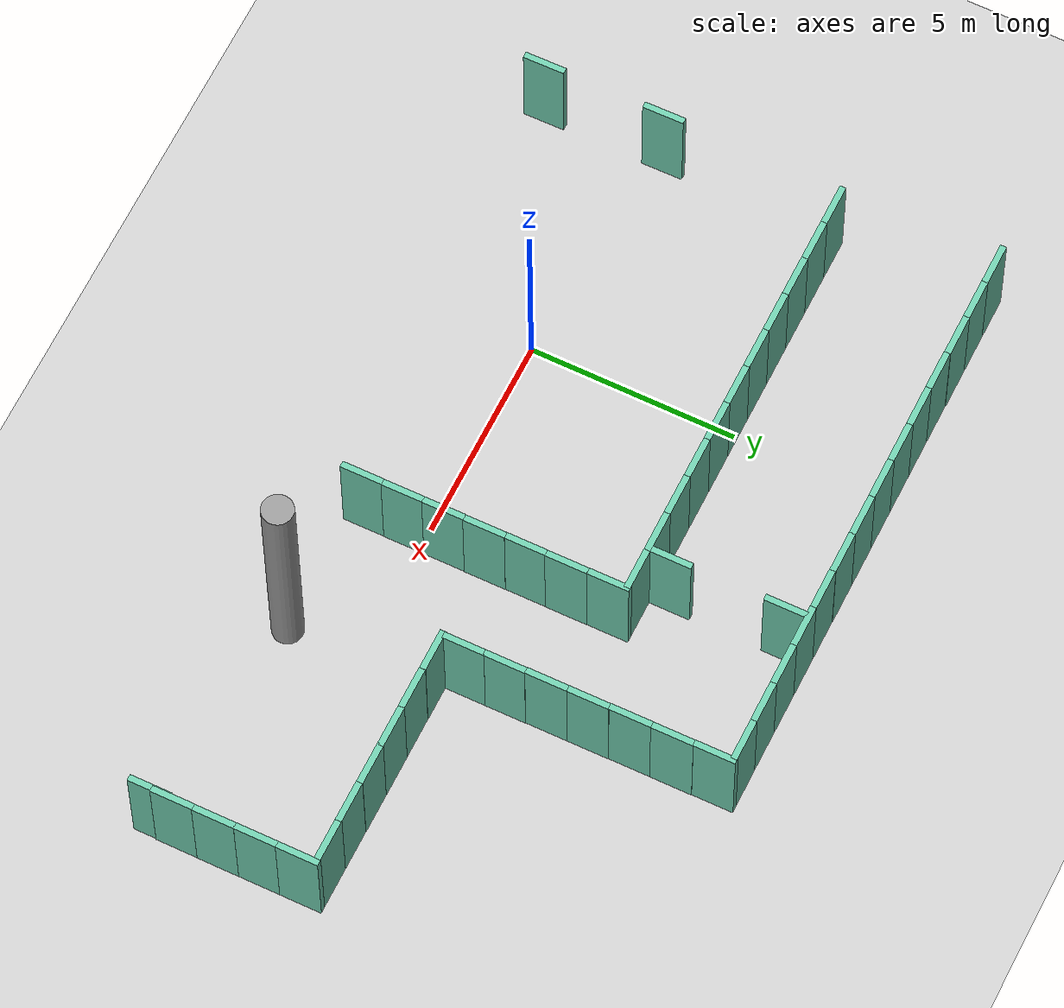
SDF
<sdf version="1.6">
 <world name="default">
  <model name="ground_plane">
   <static>1</static>
   <link name="link">
    <collision name="collision">
     <geometry><plane><normal>0 0 1</normal><size>100 100</size></plane></geometry>
     <surface><friction><ode><mu>100</mu><mu2>50</mu2></ode></friction></surface>
    </collision>
    <visual name="visual">
     <cast_shadows>0</cast_shadows>
     <geometry><plane><normal>0 0 1</normal><size>100 100</size></plane></geometry>
     <material>
      <script><uri>file://media/materials/scripts/gazebo.material</uri><name>Gazebo/Grey</name></script>
     </material>
    </visual>
   </link>
  </model>
  <model name="wall1m_0_clone_8_clone">
   <pose>-5 5 0 0 -0 0</pose>
   <link name="Wall_2">
    <collision name="Wall_2_Collision">
     <geometry><box><size>1 0.15 2.5</size></box></geometry>
     <pose>0 0 1.25 0 -0 0</pose>
    </collision>
    <visual name="Wall_2_Visual">
     <pose>0 0 1.25 0 -0 0</pose>
     <geometry><box><size>1 0.15 2.5</size></box></geometry>
     <material>
      <script><uri>file://media/materials/scripts/gazebo.material</uri><name>Gazebo/Grey</name></script>
      <ambient>0.435294 0.796078 0.67451 1</ambient>
     </material>
     <meta><layer>0</layer></meta>
    </visual>
   </link>
   <static>1</static>
  </model>
  <model name="wall1m_0_clone_8_clone_0">
   <pose>-4 5 0 0 -0 0</pose>
   <link name="Wall_2">
    <collision name="Wall_2_Collision">
     <geometry><box><size>1 0.15 2.5</size></box></geometry>
     <pose>0 0 1.25 0 -0 0</pose>
    </collision>
    <visual name="Wall_2_Visual">
     <pose>0 0 1.25 0 -0 0</pose>
     <geometry><box><size>1 0.15 2.5</size></box></geometry>
     <material>
      <script><uri>file://media/materials/scripts/gazebo.material</uri><name>Gazebo/Grey</name></script>
      <ambient>0.435294 0.796078 0.67451 1</ambient>
     </material>
     <meta><layer>0</layer></meta>
    </visual>
   </link>
   <static>1</static>
  </model>
  <model name="wall1m_0_clone_8_clone_1">
   <pose>-3 5 0 0 -0 0</pose>
   <link name="Wall_2">
    <collision name="Wall_2_Collision">
     <geometry><box><size>1 0.15 2.5</size></box></geometry>
     <pose>0 0 1.25 0 -0 0</pose>
    </collision>
    <visual name="Wall_2_Visual">
     <pose>0 0 1.25 0 -0 0</pose>
     <geometry><box><size>1 0.15 2.5</size></box></geometry>
     <material>
      <script><uri>file://media/materials/scripts/gazebo.material</uri><name>Gazebo/Grey</name></script>
      <ambient>0.435294 0.796078 0.67451 1</ambient>
     </material>
     <meta><layer>0</layer></meta>
    </visual>
   </link>
   <static>1</static>
  </model>
  <model name="wall1m_0_clone_8_clone_2">
   <pose>-2 5 0 0 -0 0</pose>
   <link name="Wall_2">
    <collision name="Wall_2_Collision">
     <geometry><box><size>1 0.15 2.5</size></box></geometry>
     <pose>0 0 1.25 0 -0 0</pose>
    </collision>
    <visual name="Wall_2_Visual">
     <pose>0 0 1.25 0 -0 0</pose>
     <geometry><box><size>1 0.15 2.5</size></box></geometry>
     <material>
      <script><uri>file://media/materials/scripts/gazebo.material</uri><name>Gazebo/Grey</name></script>
      <ambient>0.435294 0.796078 0.67451 1</ambient>
     </material>
     <meta><layer>0</layer></meta>
    </visual>
   </link>
   <static>1</static>
  </model>
  <model name="wall1m_0_clone_8_clone_3">
   <pose>-1 5 0 0 -0 0</pose>
   <link name="Wall_2">
    <collision name="Wall_2_Collision">
     <geometry><box><size>1 0.15 2.5</size></box></geometry>
     <pose>0 0 1.25 0 -0 0</pose>
    </collision>
    <visual name="Wall_2_Visual">
     <pose>0 0 1.25 0 -0 0</pose>
     <geometry><box><size>1 0.15 2.5</size></box></geometry>
     <material>
      <script><uri>file://media/materials/scripts/gazebo.material</uri><name>Gazebo/Grey</name></script>
      <ambient>0.435294 0.796078 0.67451 1</ambient>
     </material>
     <meta><layer>0</layer></meta>
    </visual>
   </link>
   <static>1</static>
  </model>
  <model name="wall1m_0_clone_8_clone_4">
   <pose>0 5 0 0 -0 0</pose>
   <link name="Wall_2">
    <collision name="Wall_2_Collision">
     <geometry><box><size>1 0.15 2.5</size></box></geometry>
     <pose>0 0 1.25 0 -0 0</pose>
    </collision>
    <visual name="Wall_2_Visual">
     <pose>0 0 1.25 0 -0 0</pose>
     <geometry><box><size>1 0.15 2.5</size></box></geometry>
     <material>
      <script><uri>file://media/materials/scripts/gazebo.material</uri><name>Gazebo/Grey</name></script>
      <ambient>0.435294 0.796078 0.67451 1</ambient>
     </material>
     <meta><layer>0</layer></meta>
    </visual>
   </link>
   <static>1</static>
  </model>
  <model name="wall1m_0_clone_8_clone_5">
   <pose>1 5 0 0 -0 0</pose>
   <link name="Wall_2">
    <collision name="Wall_2_Collision">
     <geometry><box><size>1 0.15 2.5</size></box></geometry>
     <pose>0 0 1.25 0 -0 0</pose>
    </collision>
    <visual name="Wall_2_Visual">
     <pose>0 0 1.25 0 -0 0</pose>
     <geometry><box><size>1 0.15 2.5</size></box></geometry>
     <material>
      <script><uri>file://media/materials/scripts/gazebo.material</uri><name>Gazebo/Grey</name></script>
      <ambient>0.435294 0.796078 0.67451 1</ambient>
     </material>
     <meta><layer>0</layer></meta>
    </visual>
   </link>
   <static>1</static>
  </model>
  <model name="wall1m_0_clone_8_clone_6">
   <pose>2 5 0 0 -0 0</pose>
   <link name="Wall_2">
    <collision name="Wall_2_Collision">
     <geometry><box><size>1 0.15 2.5</size></box></geometry>
     <pose>0 0 1.25 0 -0 0</pose>
    </collision>
    <visual name="Wall_2_Visual">
     <pose>0 0 1.25 0 -0 0</pose>
     <geometry><box><size>1 0.15 2.5</size></box></geometry>
     <material>
      <script><uri>file://media/materials/scripts/gazebo.material</uri><name>Gazebo/Grey</name></script>
      <ambient>0.435294 0.796078 0.67451 1</ambient>
     </material>
     <meta><layer>0</layer></meta>
    </visual>
   </link>
   <static>1</static>
  </model>
  <model name="wall1m_0_clone_8_clone_7">
   <pose>3 5 0 0 -0 0</pose>
   <link name="Wall_2">
    <collision name="Wall_2_Collision">
     <geometry><box><size>1 0.15 2.5</size></box></geometry>
     <pose>0 0 1.25 0 -0 0</pose>
    </collision>
    <visual name="Wall_2_Visual">
     <pose>0 0 1.25 0 -0 0</pose>
     <geometry><box><size>1 0.15 2.5</size></box></geometry>
     <material>
      <script><uri>file://media/materials/scripts/gazebo.material</uri><name>Gazebo/Grey</name></script>
      <ambient>0.435294 0.796078 0.67451 1</ambient>
     </material>
     <meta><layer>0</layer></meta>
    </visual>
   </link>
   <static>1</static>
  </model>
  <model name="wall1m_0_clone_8_clone_8">
   <pose>4 5 0 0 -0 0</pose>
   <link name="Wall_2">
    <collision name="Wall_2_Collision">
     <geometry><box><size>1 0.15 2.5</size></box></geometry>
     <pose>0 0 1.25 0 -0 0</pose>
    </collision>
    <visual name="Wall_2_Visual">
     <pose>0 0 1.25 0 -0 0</pose>
     <geometry><box><size>1 0.15 2.5</size></box></geometry>
     <material>
      <script><uri>file://media/materials/scripts/gazebo.material</uri><name>Gazebo/Grey</name></script>
      <ambient>0.435294 0.796078 0.67451 1</ambient>
     </material>
     <meta><layer>0</layer></meta>
    </visual>
   </link>
   <static>1</static>
  </model>
  <model name="wall1m_0_clone_8_clone_9">
   <pose>5 5 0 0 -0 0</pose>
   <link name="Wall_2">
    <collision name="Wall_2_Collision">
     <geometry><box><size>1 0.15 2.5</size></box></geometry>
     <pose>0 0 1.25 0 -0 0</pose>
    </collision>
    <visual name="Wall_2_Visual">
     <pose>0 0 1.25 0 -0 0</pose>
     <geometry><box><size>1 0.15 2.5</size></box></geometry>
     <material>
      <script><uri>file://media/materials/scripts/gazebo.material</uri><name>Gazebo/Grey</name></script>
      <ambient>0.435294 0.796078 0.67451 1</ambient>
     </material>
     <meta><layer>0</layer></meta>
    </visual>
   </link>
   <static>1</static>
  </model>
  <model name="wall1m_0_clone_8_clone_9_clone">
   <pose>5.49961 4.57845 0 0 0 -1.5658</pose>
   <link name="Wall_2">
    <collision name="Wall_2_Collision">
     <geometry><box><size>1 0.15 2.5</size></box></geometry>
     <pose>0 0 1.25 0 -0 0</pose>
    </collision>
    <visual name="Wall_2_Visual">
     <pose>0 0 1.25 0 -0 0</pose>
     <geometry><box><size>1 0.15 2.5</size></box></geometry>
     <material>
      <script><uri>file://media/materials/scripts/gazebo.material</uri><name>Gazebo/Grey</name></script>
      <ambient>0.435294 0.796078 0.67451 1</ambient>
     </material>
     <meta><layer>0</layer></meta>
    </visual>
   </link>
   <static>1</static>
  </model>
  <model name="wall1m_0_clone_8_clone_9_clone_clone_14">
   <pose>-5.47454 0.61865 0 0 0 -1.56</pose>
   <link name="Wall_2">
    <collision name="Wall_2_Collision">
     <geometry><box><size>1 0.15 2.5</size></box></geometry>
     <pose>0 0 1.25 0 -0 0</pose>
    </collision>
    <visual name="Wall_2_Visual">
     <pose>0 0 1.25 0 -0 0</pose>
     <geometry><box><size>1 0.15 2.5</size></box></geometry>
     <material>
      <script><uri>file://media/materials/scripts/gazebo.material</uri><name>Gazebo/Grey</name></script>
      <ambient>0.435294 0.796078 0.67451 1</ambient>
     </material>
     <meta><layer>0</layer></meta>
    </visual>
   </link>
   <static>1</static>
  </model>
  <model name="wall1m_0_clone_8_clone_9_clone_clone_17">
   <pose>-5.46878 -2.34019 0 0 0 -1.56</pose>
   <link name="Wall_2">
    <collision name="Wall_2_Collision">
     <geometry><box><size>1 0.15 2.5</size></box></geometry>
     <pose>0 0 1.25 0 -0 0</pose>
    </collision>
    <visual name="Wall_2_Visual">
     <pose>0 0 1.25 0 -0 0</pose>
     <geometry><box><size>1 0.15 2.5</size></box></geometry>
     <material>
      <script><uri>file://media/materials/scripts/gazebo.material</uri><name>Gazebo/Grey</name></script>
      <ambient>0.435294 0.796078 0.67451 1</ambient>
     </material>
     <meta><layer>0</layer></meta>
    </visual>
   </link>
   <static>1</static>
  </model>
  <model name="wall1m_0_clone_8_clone_clone_2">
   <pose>-5.18883 8.81035 0 0 -0 0</pose>
   <link name="Wall_2">
    <collision name="Wall_2_Collision">
     <geometry><box><size>1 0.15 2.5</size></box></geometry>
     <pose>0 0 1.25 0 -0 0</pose>
    </collision>
    <visual name="Wall_2_Visual">
     <pose>0 0 1.25 0 -0 0</pose>
     <geometry><box><size>1 0.15 2.5</size></box></geometry>
     <material>
      <script><uri>file://media/materials/scripts/gazebo.material</uri><name>Gazebo/Grey</name></script>
      <ambient>0.435294 0.796078 0.67451 1</ambient>
     </material>
     <meta><layer>0</layer></meta>
    </visual>
   </link>
   <static>1</static>
  </model>
  <model name="wall1m_0_clone_8_clone_clone_3">
   <pose>-4.21856 8.80952 0 0 -0 0</pose>
   <link name="Wall_2">
    <collision name="Wall_2_Collision">
     <geometry><box><size>1 0.15 2.5</size></box></geometry>
     <pose>0 0 1.25 0 -0 0</pose>
    </collision>
    <visual name="Wall_2_Visual">
     <pose>0 0 1.25 0 -0 0</pose>
     <geometry><box><size>1 0.15 2.5</size></box></geometry>
     <material>
      <script><uri>file://media/materials/scripts/gazebo.material</uri><name>Gazebo/Grey</name></script>
      <ambient>0.435294 0.796078 0.67451 1</ambient>
     </material>
     <meta><layer>0</layer></meta>
    </visual>
   </link>
   <static>1</static>
  </model>
  <model name="wall1m_0_clone_8_clone_clone_4">
   <pose>-3.22087 8.8088 0 0 -0 0</pose>
   <link name="Wall_2">
    <collision name="Wall_2_Collision">
     <geometry><box><size>1 0.15 2.5</size></box></geometry>
     <pose>0 0 1.25 0 -0 0</pose>
    </collision>
    <visual name="Wall_2_Visual">
     <pose>0 0 1.25 0 -0 0</pose>
     <geometry><box><size>1 0.15 2.5</size></box></geometry>
     <material>
      <script><uri>file://media/materials/scripts/gazebo.material</uri><name>Gazebo/Grey</name></script>
      <ambient>0.435294 0.796078 0.67451 1</ambient>
     </material>
     <meta><layer>0</layer></meta>
    </visual>
   </link>
   <static>1</static>
  </model>
  <model name="wall1m_0_clone_8_clone_clone_5">
   <pose>-2.23037 8.79955 0 0 -0 0</pose>
   <link name="Wall_2">
    <collision name="Wall_2_Collision">
     <geometry><box><size>1 0.15 2.5</size></box></geometry>
     <pose>0 0 1.25 0 -0 0</pose>
    </collision>
    <visual name="Wall_2_Visual">
     <pose>0 0 1.25 0 -0 0</pose>
     <geometry><box><size>1 0.15 2.5</size></box></geometry>
     <material>
      <script><uri>file://media/materials/scripts/gazebo.material</uri><name>Gazebo/Grey</name></script>
      <ambient>0.435294 0.796078 0.67451 1</ambient>
     </material>
     <meta><layer>0</layer></meta>
    </visual>
   </link>
   <static>1</static>
  </model>
  <model name="wall1m_0_clone_8_clone_clone_6">
   <pose>-1.25825 8.79936 0 0 -0 0</pose>
   <link name="Wall_2">
    <collision name="Wall_2_Collision">
     <geometry><box><size>1 0.15 2.5</size></box></geometry>
     <pose>0 0 1.25 0 -0 0</pose>
    </collision>
    <visual name="Wall_2_Visual">
     <pose>0 0 1.25 0 -0 0</pose>
     <geometry><box><size>1 0.15 2.5</size></box></geometry>
     <material>
      <script><uri>file://media/materials/scripts/gazebo.material</uri><name>Gazebo/Grey</name></script>
      <ambient>0.435294 0.796078 0.67451 1</ambient>
     </material>
     <meta><layer>0</layer></meta>
    </visual>
   </link>
   <static>1</static>
  </model>
  <model name="wall1m_0_clone_8_clone_clone_7">
   <pose>-0.28955 8.79942 0 0 -0 0</pose>
   <link name="Wall_2">
    <collision name="Wall_2_Collision">
     <geometry><box><size>1 0.15 2.5</size></box></geometry>
     <pose>0 0 1.25 0 -0 0</pose>
    </collision>
    <visual name="Wall_2_Visual">
     <pose>0 0 1.25 0 -0 0</pose>
     <geometry><box><size>1 0.15 2.5</size></box></geometry>
     <material>
      <script><uri>file://media/materials/scripts/gazebo.material</uri><name>Gazebo/Grey</name></script>
      <ambient>0.435294 0.796078 0.67451 1</ambient>
     </material>
     <meta><layer>0</layer></meta>
    </visual>
   </link>
   <static>1</static>
  </model>
  <model name="wall1m_0_clone_8_clone_clone_8">
   <pose>0.695038 8.79962 0 0 -0 0</pose>
   <link name="Wall_2">
    <collision name="Wall_2_Collision">
     <geometry><box><size>1 0.15 2.5</size></box></geometry>
     <pose>0 0 1.25 0 -0 0</pose>
    </collision>
    <visual name="Wall_2_Visual">
     <pose>0 0 1.25 0 -0 0</pose>
     <geometry><box><size>1 0.15 2.5</size></box></geometry>
     <material>
      <script><uri>file://media/materials/scripts/gazebo.material</uri><name>Gazebo/Grey</name></script>
      <ambient>0.435294 0.796078 0.67451 1</ambient>
     </material>
     <meta><layer>0</layer></meta>
    </visual>
   </link>
   <static>1</static>
  </model>
  <model name="wall1m_0_clone_8_clone_clone_9">
   <pose>1.69822 8.80194 0 0 -0 0</pose>
   <link name="Wall_2">
    <collision name="Wall_2_Collision">
     <geometry><box><size>1 0.15 2.5</size></box></geometry>
     <pose>0 0 1.25 0 -0 0</pose>
    </collision>
    <visual name="Wall_2_Visual">
     <pose>0 0 1.25 0 -0 0</pose>
     <geometry><box><size>1 0.15 2.5</size></box></geometry>
     <material>
      <script><uri>file://media/materials/scripts/gazebo.material</uri><name>Gazebo/Grey</name></script>
      <ambient>0.435294 0.796078 0.67451 1</ambient>
     </material>
     <meta><layer>0</layer></meta>
    </visual>
   </link>
   <static>1</static>
  </model>
  <model name="wall1m_0_clone_8_clone_clone_10">
   <pose>2.69303 8.80098 0 0 -0 0</pose>
   <link name="Wall_2">
    <collision name="Wall_2_Collision">
     <geometry><box><size>1 0.15 2.5</size></box></geometry>
     <pose>0 0 1.25 0 -0 0</pose>
    </collision>
    <visual name="Wall_2_Visual">
     <pose>0 0 1.25 0 -0 0</pose>
     <geometry><box><size>1 0.15 2.5</size></box></geometry>
     <material>
      <script><uri>file://media/materials/scripts/gazebo.material</uri><name>Gazebo/Grey</name></script>
      <ambient>0.435294 0.796078 0.67451 1</ambient>
     </material>
     <meta><layer>0</layer></meta>
    </visual>
   </link>
   <static>1</static>
  </model>
  <model name="wall1m_0_clone_8_clone_clone_11">
   <pose>3.69045 8.7948 0 0 -0 0</pose>
   <link name="Wall_2">
    <collision name="Wall_2_Collision">
     <geometry><box><size>1 0.15 2.5</size></box></geometry>
     <pose>0 0 1.25 0 -0 0</pose>
    </collision>
    <visual name="Wall_2_Visual">
     <pose>0 0 1.25 0 -0 0</pose>
     <geometry><box><size>1 0.15 2.5</size></box></geometry>
     <material>
      <script><uri>file://media/materials/scripts/gazebo.material</uri><name>Gazebo/Grey</name></script>
      <ambient>0.435294 0.796078 0.67451 1</ambient>
     </material>
     <meta><layer>0</layer></meta>
    </visual>
   </link>
   <static>1</static>
  </model>
  <model name="wall1m_0_clone_8_clone_clone_12">
   <pose>4.66215 8.79464 0 0 -0 0</pose>
   <link name="Wall_2">
    <collision name="Wall_2_Collision">
     <geometry><box><size>1 0.15 2.5</size></box></geometry>
     <pose>0 0 1.25 0 -0 0</pose>
    </collision>
    <visual name="Wall_2_Visual">
     <pose>0 0 1.25 0 -0 0</pose>
     <geometry><box><size>1 0.15 2.5</size></box></geometry>
     <material>
      <script><uri>file://media/materials/scripts/gazebo.material</uri><name>Gazebo/Grey</name></script>
      <ambient>0.435294 0.796078 0.67451 1</ambient>
     </material>
     <meta><layer>0</layer></meta>
    </visual>
   </link>
   <static>1</static>
  </model>
  <model name="wall1m_0_clone_8_clone_clone_13">
   <pose>5.66178 8.79379 0 0 -0 0</pose>
   <link name="Wall_2">
    <collision name="Wall_2_Collision">
     <geometry><box><size>1 0.15 2.5</size></box></geometry>
     <pose>0 0 1.25 0 -0 0</pose>
    </collision>
    <visual name="Wall_2_Visual">
     <pose>0 0 1.25 0 -0 0</pose>
     <geometry><box><size>1 0.15 2.5</size></box></geometry>
     <material>
      <script><uri>file://media/materials/scripts/gazebo.material</uri><name>Gazebo/Grey</name></script>
      <ambient>0.435294 0.796078 0.67451 1</ambient>
     </material>
     <meta><layer>0</layer></meta>
    </visual>
   </link>
   <static>1</static>
  </model>
  <model name="wall1m_0_clone_8_clone_clone_14">
   <pose>6.65931 8.793 0 0 -0 0</pose>
   <link name="Wall_2">
    <collision name="Wall_2_Collision">
     <geometry><box><size>1 0.15 2.5</size></box></geometry>
     <pose>0 0 1.25 0 -0 0</pose>
    </collision>
    <visual name="Wall_2_Visual">
     <pose>0 0 1.25 0 -0 0</pose>
     <geometry><box><size>1 0.15 2.5</size></box></geometry>
     <material>
      <script><uri>file://media/materials/scripts/gazebo.material</uri><name>Gazebo/Grey</name></script>
      <ambient>0.435294 0.796078 0.67451 1</ambient>
     </material>
     <meta><layer>0</layer></meta>
    </visual>
   </link>
   <static>1</static>
  </model>
  <model name="wall1m_0_clone_8_clone_clone_15">
   <pose>7.6468 8.79561 0 0 -0 0</pose>
   <link name="Wall_2">
    <collision name="Wall_2_Collision">
     <geometry><box><size>1 0.15 2.5</size></box></geometry>
     <pose>0 0 1.25 0 -0 0</pose>
    </collision>
    <visual name="Wall_2_Visual">
     <pose>0 0 1.25 0 -0 0</pose>
     <geometry><box><size>1 0.15 2.5</size></box></geometry>
     <material>
      <script><uri>file://media/materials/scripts/gazebo.material</uri><name>Gazebo/Grey</name></script>
      <ambient>0.435294 0.796078 0.67451 1</ambient>
     </material>
     <meta><layer>0</layer></meta>
    </visual>
   </link>
   <static>1</static>
  </model>
  <model name="wall1m_0_clone_8_clone_9_clone_clone">
   <pose>5.50809 3.57577 0 0 0 -1.5658</pose>
   <link name="Wall_2">
    <collision name="Wall_2_Collision">
     <geometry><box><size>1 0.15 2.5</size></box></geometry>
     <pose>0 0 1.25 0 -0 0</pose>
    </collision>
    <visual name="Wall_2_Visual">
     <pose>0 0 1.25 0 -0 0</pose>
     <geometry><box><size>1 0.15 2.5</size></box></geometry>
     <material>
      <script><uri>file://media/materials/scripts/gazebo.material</uri><name>Gazebo/Grey</name></script>
      <ambient>0.435294 0.796078 0.67451 1</ambient>
     </material>
     <meta><layer>0</layer></meta>
    </visual>
   </link>
   <static>1</static>
  </model>
  <model name="wall1m_0_clone_8_clone_9_clone_clone_0">
   <pose>5.5083 2.57689 0 0 0 -1.5658</pose>
   <link name="Wall_2">
    <collision name="Wall_2_Collision">
     <geometry><box><size>1 0.15 2.5</size></box></geometry>
     <pose>0 0 1.25 0 -0 0</pose>
    </collision>
    <visual name="Wall_2_Visual">
     <pose>0 0 1.25 0 -0 0</pose>
     <geometry><box><size>1 0.15 2.5</size></box></geometry>
     <material>
      <script><uri>file://media/materials/scripts/gazebo.material</uri><name>Gazebo/Grey</name></script>
      <ambient>0.435294 0.796078 0.67451 1</ambient>
     </material>
     <meta><layer>0</layer></meta>
    </visual>
   </link>
   <static>1</static>
  </model>
  <model name="wall1m_0_clone_8_clone_9_clone_clone_1">
   <pose>5.5167 1.6077 0 0 0 -1.5658</pose>
   <link name="Wall_2">
    <collision name="Wall_2_Collision">
     <geometry><box><size>1 0.15 2.5</size></box></geometry>
     <pose>0 0 1.25 0 -0 0</pose>
    </collision>
    <visual name="Wall_2_Visual">
     <pose>0 0 1.25 0 -0 0</pose>
     <geometry><box><size>1 0.15 2.5</size></box></geometry>
     <material>
      <script><uri>file://media/materials/scripts/gazebo.material</uri><name>Gazebo/Grey</name></script>
      <ambient>0.435294 0.796078 0.67451 1</ambient>
     </material>
     <meta><layer>0</layer></meta>
    </visual>
   </link>
   <static>1</static>
  </model>
  <model name="wall1m_0_clone_8_clone_9_clone_clone_2">
   <pose>5.51438 0.616616 0 0 0 -1.5658</pose>
   <link name="Wall_2">
    <collision name="Wall_2_Collision">
     <geometry><box><size>1 0.15 2.5</size></box></geometry>
     <pose>0 0 1.25 0 -0 0</pose>
    </collision>
    <visual name="Wall_2_Visual">
     <pose>0 0 1.25 0 -0 0</pose>
     <geometry><box><size>1 0.15 2.5</size></box></geometry>
     <material>
      <script><uri>file://media/materials/scripts/gazebo.material</uri><name>Gazebo/Grey</name></script>
      <ambient>0.435294 0.796078 0.67451 1</ambient>
     </material>
     <meta><layer>0</layer></meta>
    </visual>
   </link>
   <static>1</static>
  </model>
  <model name="wall1m_0_clone_8_clone_9_clone_clone_3">
   <pose>5.51756 -0.366444 0 0 0 -1.5658</pose>
   <link name="Wall_2">
    <collision name="Wall_2_Collision">
     <geometry><box><size>1 0.15 2.5</size></box></geometry>
     <pose>0 0 1.25 0 -0 0</pose>
    </collision>
    <visual name="Wall_2_Visual">
     <pose>0 0 1.25 0 -0 0</pose>
     <geometry><box><size>1 0.15 2.5</size></box></geometry>
     <material>
      <script><uri>file://media/materials/scripts/gazebo.material</uri><name>Gazebo/Grey</name></script>
      <ambient>0.435294 0.796078 0.67451 1</ambient>
     </material>
     <meta><layer>0</layer></meta>
    </visual>
   </link>
   <static>1</static>
  </model>
  <model name="wall1m_0_clone_8_clone_9_clone_clone_4">
   <pose>5.51788 -1.35862 0 0 0 -1.5658</pose>
   <link name="Wall_2">
    <collision name="Wall_2_Collision">
     <geometry><box><size>1 0.15 2.5</size></box></geometry>
     <pose>0 0 1.25 0 -0 0</pose>
    </collision>
    <visual name="Wall_2_Visual">
     <pose>0 0 1.25 0 -0 0</pose>
     <geometry><box><size>1 0.15 2.5</size></box></geometry>
     <material>
      <script><uri>file://media/materials/scripts/gazebo.material</uri><name>Gazebo/Grey</name></script>
      <ambient>0.435294 0.796078 0.67451 1</ambient>
     </material>
     <meta><layer>0</layer></meta>
    </visual>
   </link>
   <static>1</static>
  </model>
  <model name="wall1m_0_clone_8_clone_9_clone_clone_8">
   <pose>8.17247 8.37649 0 0 0 -1.5658</pose>
   <link name="Wall_2">
    <collision name="Wall_2_Collision">
     <geometry><box><size>1 0.15 2.5</size></box></geometry>
     <pose>0 0 1.25 0 -0 0</pose>
    </collision>
    <visual name="Wall_2_Visual">
     <pose>0 0 1.25 0 -0 0</pose>
     <geometry><box><size>1 0.15 2.5</size></box></geometry>
     <material>
      <script><uri>file://media/materials/scripts/gazebo.material</uri><name>Gazebo/Grey</name></script>
      <ambient>0.435294 0.796078 0.67451 1</ambient>
     </material>
     <meta><layer>0</layer></meta>
    </visual>
   </link>
   <static>1</static>
  </model>
  <model name="wall1m_0_clone_8_clone_9_clone_clone_9">
   <pose>8.1848 7.39326 0 0 0 -1.5658</pose>
   <link name="Wall_2">
    <collision name="Wall_2_Collision">
     <geometry><box><size>1 0.15 2.5</size></box></geometry>
     <pose>0 0 1.25 0 -0 0</pose>
    </collision>
    <visual name="Wall_2_Visual">
     <pose>0 0 1.25 0 -0 0</pose>
     <geometry><box><size>1 0.15 2.5</size></box></geometry>
     <material>
      <script><uri>file://media/materials/scripts/gazebo.material</uri><name>Gazebo/Grey</name></script>
      <ambient>0.435294 0.796078 0.67451 1</ambient>
     </material>
     <meta><layer>0</layer></meta>
    </visual>
   </link>
   <static>1</static>
  </model>
  <model name="wall1m_0_clone_8_clone_9_clone_clone_30">
   <pose>8.1881 6.39552 0 0 0 -1.5658</pose>
   <link name="Wall_2">
    <collision name="Wall_2_Collision">
     <geometry><box><size>1 0.15 2.5</size></box></geometry>
     <pose>0 0 1.25 0 -0 0</pose>
    </collision>
    <visual name="Wall_2_Visual">
     <pose>0 0 1.25 0 -0 0</pose>
     <geometry><box><size>1 0.15 2.5</size></box></geometry>
     <material>
      <script><uri>file://media/materials/scripts/gazebo.material</uri><name>Gazebo/Grey</name></script>
      <ambient>0.435294 0.796078 0.67451 1</ambient>
     </material>
     <meta><layer>0</layer></meta>
    </visual>
   </link>
   <static>1</static>
  </model>
  <model name="wall1m_0_clone_8_clone_9_clone_clone_31">
   <pose>8.20055 5.41256 0 0 0 -1.5658</pose>
   <link name="Wall_2">
    <collision name="Wall_2_Collision">
     <geometry><box><size>1 0.15 2.5</size></box></geometry>
     <pose>0 0 1.25 0 -0 0</pose>
    </collision>
    <visual name="Wall_2_Visual">
     <pose>0 0 1.25 0 -0 0</pose>
     <geometry><box><size>1 0.15 2.5</size></box></geometry>
     <material>
      <script><uri>file://media/materials/scripts/gazebo.material</uri><name>Gazebo/Grey</name></script>
      <ambient>0.435294 0.796078 0.67451 1</ambient>
     </material>
     <meta><layer>0</layer></meta>
    </visual>
   </link>
   <static>1</static>
  </model>
  <model name="wall1m_0_clone_8_clone_9_clone_clone_32">
   <pose>8.20705 4.41929 0 0 0 -1.5658</pose>
   <link name="Wall_2">
    <collision name="Wall_2_Collision">
     <geometry><box><size>1 0.15 2.5</size></box></geometry>
     <pose>0 0 1.25 0 -0 0</pose>
    </collision>
    <visual name="Wall_2_Visual">
     <pose>0 0 1.25 0 -0 0</pose>
     <geometry><box><size>1 0.15 2.5</size></box></geometry>
     <material>
      <script><uri>file://media/materials/scripts/gazebo.material</uri><name>Gazebo/Grey</name></script>
      <ambient>0.435294 0.796078 0.67451 1</ambient>
     </material>
     <meta><layer>0</layer></meta>
    </visual>
   </link>
   <static>1</static>
  </model>
  <model name="wall1m_0_clone_8_clone_9_clone_clone_33">
   <pose>8.22011 3.42726 0 0 0 -1.5658</pose>
   <link name="Wall_2">
    <collision name="Wall_2_Collision">
     <geometry><box><size>1 0.15 2.5</size></box></geometry>
     <pose>0 0 1.25 0 -0 0</pose>
    </collision>
    <visual name="Wall_2_Visual">
     <pose>0 0 1.25 0 -0 0</pose>
     <geometry><box><size>1 0.15 2.5</size></box></geometry>
     <material>
      <script><uri>file://media/materials/scripts/gazebo.material</uri><name>Gazebo/Grey</name></script>
      <ambient>0.435294 0.796078 0.67451 1</ambient>
     </material>
     <meta><layer>0</layer></meta>
    </visual>
   </link>
   <static>1</static>
  </model>
  <model name="wall1m_0_clone_8_clone_9_clone_clone_34">
   <pose>8.22578 2.46027 0 0 0 -1.5658</pose>
   <link name="Wall_2">
    <collision name="Wall_2_Collision">
     <geometry><box><size>1 0.15 2.5</size></box></geometry>
     <pose>0 0 1.25 0 -0 0</pose>
    </collision>
    <visual name="Wall_2_Visual">
     <pose>0 0 1.25 0 -0 0</pose>
     <geometry><box><size>1 0.15 2.5</size></box></geometry>
     <material>
      <script><uri>file://media/materials/scripts/gazebo.material</uri><name>Gazebo/Grey</name></script>
      <ambient>0.435294 0.796078 0.67451 1</ambient>
     </material>
     <meta><layer>0</layer></meta>
    </visual>
   </link>
   <static>1</static>
  </model>
  <model name="wall1m_0_clone_8_clone_9_clone_0">
   <pose>8.64541 1.92199 0 0 -0 0</pose>
   <link name="Wall_2">
    <collision name="Wall_2_Collision">
     <geometry><box><size>1 0.15 2.5</size></box></geometry>
     <pose>0 0 1.25 0 -0 0</pose>
    </collision>
    <visual name="Wall_2_Visual">
     <pose>0 0 1.25 0 -0 0</pose>
     <geometry><box><size>1 0.15 2.5</size></box></geometry>
     <material>
      <script><uri>file://media/materials/scripts/gazebo.material</uri><name>Gazebo/Grey</name></script>
      <ambient>0.435294 0.796078 0.67451 1</ambient>
     </material>
     <meta><layer>0</layer></meta>
    </visual>
   </link>
   <static>1</static>
  </model>
  <model name="wall1m_0_clone_8_clone_9_clone_1">
   <pose>9.6491 1.91825 0 0 -0 0</pose>
   <link name="Wall_2">
    <collision name="Wall_2_Collision">
     <geometry><box><size>1 0.15 2.5</size></box></geometry>
     <pose>0 0 1.25 0 -0 0</pose>
    </collision>
    <visual name="Wall_2_Visual">
     <pose>0 0 1.25 0 -0 0</pose>
     <geometry><box><size>1 0.15 2.5</size></box></geometry>
     <material>
      <script><uri>file://media/materials/scripts/gazebo.material</uri><name>Gazebo/Grey</name></script>
      <ambient>0.435294 0.796078 0.67451 1</ambient>
     </material>
     <meta><layer>0</layer></meta>
    </visual>
   </link>
   <static>1</static>
  </model>
  <model name="wall1m_0_clone_8_clone_9_clone_2">
   <pose>10.6473 1.92084 0 0 -0 0</pose>
   <link name="Wall_2">
    <collision name="Wall_2_Collision">
     <geometry><box><size>1 0.15 2.5</size></box></geometry>
     <pose>0 0 1.25 0 -0 0</pose>
    </collision>
    <visual name="Wall_2_Visual">
     <pose>0 0 1.25 0 -0 0</pose>
     <geometry><box><size>1 0.15 2.5</size></box></geometry>
     <material>
      <script><uri>file://media/materials/scripts/gazebo.material</uri><name>Gazebo/Grey</name></script>
      <ambient>0.435294 0.796078 0.67451 1</ambient>
     </material>
     <meta><layer>0</layer></meta>
    </visual>
   </link>
   <static>1</static>
  </model>
  <model name="wall1m_0_clone_8_clone_9_clone_8">
   <pose>11.6142 1.91976 0 0 -0 0</pose>
   <link name="Wall_2">
    <collision name="Wall_2_Collision">
     <geometry><box><size>1 0.15 2.5</size></box></geometry>
     <pose>0 0 1.25 0 -0 0</pose>
    </collision>
    <visual name="Wall_2_Visual">
     <pose>0 0 1.25 0 -0 0</pose>
     <geometry><box><size>1 0.15 2.5</size></box></geometry>
     <material>
      <script><uri>file://media/materials/scripts/gazebo.material</uri><name>Gazebo/Grey</name></script>
      <ambient>0.435294 0.796078 0.67451 1</ambient>
     </material>
     <meta><layer>0</layer></meta>
    </visual>
   </link>
   <static>1</static>
  </model>
  <model name="wall1m_0_clone_8_clone_9_clone_7_clone_1">
   <pose>12.6013 1.91509 0 0 -0 0</pose>
   <link name="Wall_2">
    <collision name="Wall_2_Collision">
     <geometry><box><size>1 0.15 2.5</size></box></geometry>
     <pose>0 0 1.25 0 -0 0</pose>
    </collision>
    <visual name="Wall_2_Visual">
     <pose>0 0 1.25 0 -0 0</pose>
     <geometry><box><size>1 0.15 2.5</size></box></geometry>
     <material>
      <script><uri>file://media/materials/scripts/gazebo.material</uri><name>Gazebo/Grey</name></script>
      <ambient>0.435294 0.796078 0.67451 1</ambient>
     </material>
     <meta><layer>0</layer></meta>
    </visual>
   </link>
   <static>1</static>
  </model>
  <model name="wall1m_0_clone_8_clone_9_clone_7_clone_2">
   <pose>13.5782 1.9154 0 0 -0 0</pose>
   <link name="Wall_2">
    <collision name="Wall_2_Collision">
     <geometry><box><size>1 0.15 2.5</size></box></geometry>
     <pose>0 0 1.25 0 -0 0</pose>
    </collision>
    <visual name="Wall_2_Visual">
     <pose>0 0 1.25 0 -0 0</pose>
     <geometry><box><size>1 0.15 2.5</size></box></geometry>
     <material>
      <script><uri>file://media/materials/scripts/gazebo.material</uri><name>Gazebo/Grey</name></script>
      <ambient>0.435294 0.796078 0.67451 1</ambient>
     </material>
     <meta><layer>0</layer></meta>
    </visual>
   </link>
   <static>1</static>
  </model>
  <model name="wall1m_0_clone_8_clone_9_clone_clone_29_clone_clone_1">
   <pose>14.1479 1.49487 0 0 0 -1.5658</pose>
   <link name="Wall_2">
    <collision name="Wall_2_Collision">
     <geometry><box><size>1 0.15 2.5</size></box></geometry>
     <pose>0 0 1.25 0 -0 0</pose>
    </collision>
    <visual name="Wall_2_Visual">
     <pose>0 0 1.25 0 -0 0</pose>
     <geometry><box><size>1 0.15 2.5</size></box></geometry>
     <material>
      <script><uri>file://media/materials/scripts/gazebo.material</uri><name>Gazebo/Grey</name></script>
      <ambient>0.435294 0.796078 0.67451 1</ambient>
     </material>
     <meta><layer>0</layer></meta>
    </visual>
   </link>
   <static>1</static>
  </model>
  <model name="wall1m_0_clone_8_clone_9_clone_clone_29_clone_clone_2">
   <pose>14.1526 0.500895 0 0 0 -1.5658</pose>
   <link name="Wall_2">
    <collision name="Wall_2_Collision">
     <geometry><box><size>1 0.15 2.5</size></box></geometry>
     <pose>0 0 1.25 0 -0 0</pose>
    </collision>
    <visual name="Wall_2_Visual">
     <pose>0 0 1.25 0 -0 0</pose>
     <geometry><box><size>1 0.15 2.5</size></box></geometry>
     <material>
      <script><uri>file://media/materials/scripts/gazebo.material</uri><name>Gazebo/Grey</name></script>
      <ambient>0.435294 0.796078 0.67451 1</ambient>
     </material>
     <meta><layer>0</layer></meta>
    </visual>
   </link>
   <static>1</static>
  </model>
  <model name="wall1m_0_clone_8_clone_9_clone_clone_29_clone_clone_3">
   <pose>14.1588 -0.487972 0 0 0 -1.5658</pose>
   <link name="Wall_2">
    <collision name="Wall_2_Collision">
     <geometry><box><size>1 0.15 2.5</size></box></geometry>
     <pose>0 0 1.25 0 -0 0</pose>
    </collision>
    <visual name="Wall_2_Visual">
     <pose>0 0 1.25 0 -0 0</pose>
     <geometry><box><size>1 0.15 2.5</size></box></geometry>
     <material>
      <script><uri>file://media/materials/scripts/gazebo.material</uri><name>Gazebo/Grey</name></script>
      <ambient>0.435294 0.796078 0.67451 1</ambient>
     </material>
     <meta><layer>0</layer></meta>
    </visual>
   </link>
   <static>1</static>
  </model>
  <model name="wall1m_0_clone_8_clone_9_clone_clone_29_clone_clone_4">
   <pose>14.1594 -1.47952 0 0 0 -1.5658</pose>
   <link name="Wall_2">
    <collision name="Wall_2_Collision">
     <geometry><box><size>1 0.15 2.5</size></box></geometry>
     <pose>0 0 1.25 0 -0 0</pose>
    </collision>
    <visual name="Wall_2_Visual">
     <pose>0 0 1.25 0 -0 0</pose>
     <geometry><box><size>1 0.15 2.5</size></box></geometry>
     <material>
      <script><uri>file://media/materials/scripts/gazebo.material</uri><name>Gazebo/Grey</name></script>
      <ambient>0.435294 0.796078 0.67451 1</ambient>
     </material>
     <meta><layer>0</layer></meta>
    </visual>
   </link>
   <static>1</static>
  </model>
  <model name="wall1m_0_clone_8_clone_9_clone_clone_29_clone_clone_5">
   <pose>14.144 -2.02736 0 0 0 -1.5658</pose>
   <link name="Wall_2">
    <collision name="Wall_2_Collision">
     <geometry><box><size>1 0.15 2.5</size></box></geometry>
     <pose>0 0 1.25 0 -0 0</pose>
    </collision>
    <visual name="Wall_2_Visual">
     <pose>0 0 1.25 0 -0 0</pose>
     <geometry><box><size>1 0.15 2.5</size></box></geometry>
     <material>
      <script><uri>file://media/materials/scripts/gazebo.material</uri><name>Gazebo/Grey</name></script>
      <ambient>0.435294 0.796078 0.67451 1</ambient>
     </material>
     <meta><layer>0</layer></meta>
    </visual>
   </link>
   <static>1</static>
  </model>
  <model name="unit_cylinder_clone_1_clone">
   <pose>8.53075 -1.72381 2.8743 0 -0 0.001386</pose>
   <link name="unit_cylinder::link">
    <inertial>
     <mass>1</mass>
     <inertia><ixx>0.145833</ixx><ixy>0</ixy><ixz>0</ixz><iyy>0.145833</iyy><iyz>0</iyz><izz>0.125</izz></inertia>
    </inertial>
    <collision name="collision">
     <geometry><cylinder><radius>0.366049</radius><length>5.7486</length></cylinder></geometry>
    </collision>
    <visual name="visual">
     <geometry><cylinder><radius>0.366049</radius><length>5.7486</length></cylinder></geometry>
     <material>
      <script><name>Gazebo/Grey</name><uri>file://media/materials/scripts/gazebo.material</uri></script>
     </material>
    </visual>
   </link>
  </model>
  <model name="wall1m_0_clone_8_clone_9_clone_clone_10">
   <pose>4.42451 5.54669 0 0 0 -1.5658</pose>
   <link name="Wall_2">
    <collision name="Wall_2_Collision">
     <geometry><box><size>1 0.15 2.5</size></box></geometry>
     <pose>0 0 1.25 0 -0 0</pose>
    </collision>
    <visual name="Wall_2_Visual">
     <pose>0 0 1.25 0 -0 0</pose>
     <geometry><box><size>1 0.15 2.5</size></box></geometry>
     <material>
      <script><uri>file://media/materials/scripts/gazebo.material</uri><name>Gazebo/Grey</name></script>
      <ambient>0.435294 0.796078 0.67451 1</ambient>
     </material>
     <meta><layer>0</layer></meta>
    </visual>
   </link>
   <static>1</static>
  </model>
  <model name="wall1m_0_clone_8_clone_9_clone_clone_21">
   <pose>4.39634 8.2573 0 0 0 -1.5658</pose>
   <link name="Wall_2">
    <collision name="Wall_2_Collision">
     <geometry><box><size>1 0.15 2.5</size></box></geometry>
     <pose>0 0 1.25 0 -0 0</pose>
    </collision>
    <visual name="Wall_2_Visual">
     <pose>0 0 1.25 0 -0 0</pose>
     <geometry><box><size>1 0.15 2.5</size></box></geometry>
     <material>
      <script><uri>file://media/materials/scripts/gazebo.material</uri><name>Gazebo/Grey</name></script>
      <ambient>0.435294 0.796078 0.67451 1</ambient>
     </material>
     <meta><layer>0</layer></meta>
    </visual>
   </link>
   <static>1</static>
  </model>
 </world>
</sdf>
